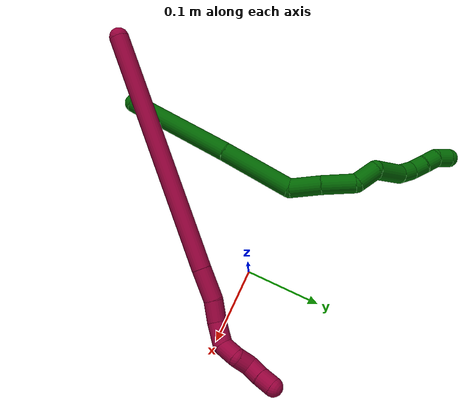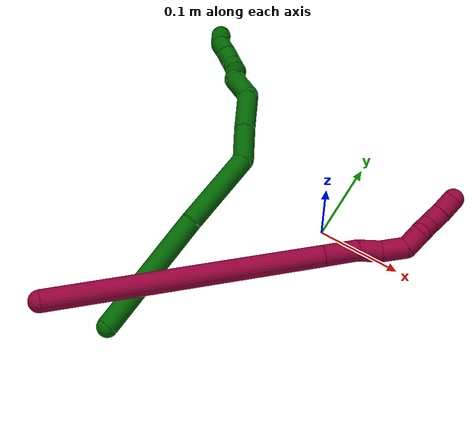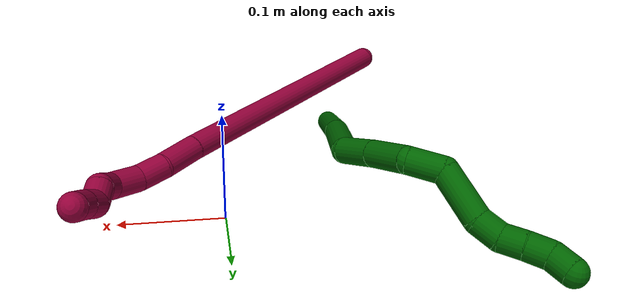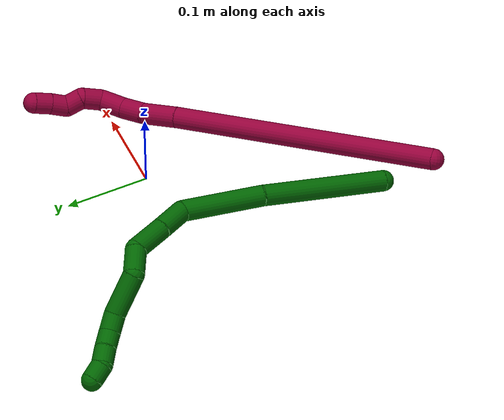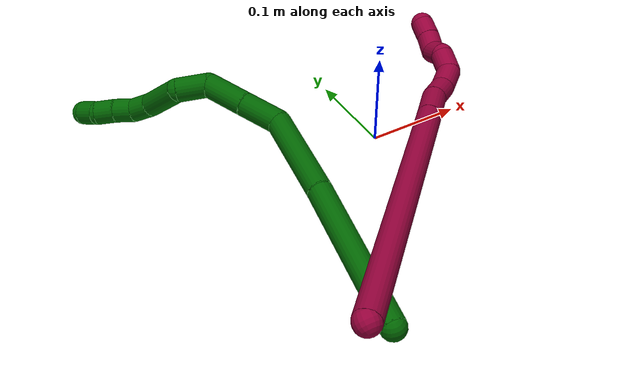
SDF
<sdf version="1.7">
 <world name="default">
  <model name="6">
   <static>0</static>
   <link name="6">
    <collision name="collision-cylinder-e_1_1_4">
     <pose>0.007955 0.068976 0.030334 -1.15647 0.105178 -0.068681</pose>
     <geometry><cylinder><radius>0.0125</radius><length>0.15154</length></cylinder></geometry>
     <surface>
      <friction><ode><mu>1.16</mu><mu2>1.16</mu2><slip1>0</slip1><slip2>0</slip2></ode></friction>
      <contact><ode><kp>1e+06</kp><kd>1</kd><max_vel>0</max_vel><min_depth>0.001</min_depth></ode></contact>
     </surface>
    </collision>
    <visual name="visual-cylinder-e_1_1_4">
     <pose>0.007955 0.068976 0.030334 -1.15647 0.105178 -0.068681</pose>
     <geometry><cylinder><radius>0.0125</radius><length>0.15154</length></cylinder></geometry>
     <material><ambient>0 0.392157 0.003922 1</ambient></material>
    </visual>
    <collision name="collision-cylinder-e_2_4_5">
     <pose>0.020336 0.184179 0.075914 -1.25223 0.0907 -0.065614</pose>
     <geometry><cylinder><radius>0.0125</radius><length>0.097755</length></cylinder></geometry>
     <surface>
      <friction><ode><mu>1.16</mu><mu2>1.16</mu2><slip1>0</slip1><slip2>0</slip2></ode></friction>
      <contact><ode><kp>1e+06</kp><kd>1</kd><max_vel>0</max_vel><min_depth>0.001</min_depth></ode></contact>
     </surface>
    </collision>
    <visual name="visual-cylinder-e_2_4_5">
     <pose>0.020336 0.184179 0.075914 -1.25223 0.0907 -0.065614</pose>
     <geometry><cylinder><radius>0.0125</radius><length>0.097755</length></cylinder></geometry>
     <material><ambient>0 0.392157 0.003922 1</ambient></material>
    </visual>
    <collision name="collision-cylinder-e_3_5_6">
     <pose>0.015087 0.245978 0.099935 -1.05761 -0.496213 0.293909</pose>
     <geometry><cylinder><radius>0.0125</radius><length>0.04065</length></cylinder></geometry>
     <surface>
      <friction><ode><mu>1.16</mu><mu2>1.16</mu2><slip1>0</slip1><slip2>0</slip2></ode></friction>
      <contact><ode><kp>1e+06</kp><kd>1</kd><max_vel>0</max_vel><min_depth>0.001</min_depth></ode></contact>
     </surface>
    </collision>
    <visual name="visual-cylinder-e_3_5_6">
     <pose>0.015087 0.245978 0.099935 -1.05761 -0.496213 0.293909</pose>
     <geometry><cylinder><radius>0.0125</radius><length>0.04065</length></cylinder></geometry>
     <material><ambient>0 0.392157 0.003922 1</ambient></material>
    </visual>
    <collision name="collision-cylinder-e_4_6_7">
     <pose>-0.004465 0.279252 0.117446 -1.11237 -0.463847 0.291552</pose>
     <geometry><cylinder><radius>0.0125</radius><length>0.044148</length></cylinder></geometry>
     <surface>
      <friction><ode><mu>1.16</mu><mu2>1.16</mu2><slip1>0</slip1><slip2>0</slip2></ode></friction>
      <contact><ode><kp>1e+06</kp><kd>1</kd><max_vel>0</max_vel><min_depth>0.001</min_depth></ode></contact>
     </surface>
    </collision>
    <visual name="visual-cylinder-e_4_6_7">
     <pose>-0.004465 0.279252 0.117446 -1.11237 -0.463847 0.291552</pose>
     <geometry><cylinder><radius>0.0125</radius><length>0.044148</length></cylinder></geometry>
     <material><ambient>0 0.392157 0.003922 1</ambient></material>
    </visual>
    <collision name="collision-cylinder-e_5_7_8">
     <pose>-0.028985 0.304015 0.127202 -1.42742 -1.11751 0.992496</pose>
     <geometry><cylinder><radius>0.0125</radius><length>0.032578</length></cylinder></geometry>
     <surface>
      <friction><ode><mu>1.16</mu><mu2>1.16</mu2><slip1>0</slip1><slip2>0</slip2></ode></friction>
      <contact><ode><kp>1e+06</kp><kd>1</kd><max_vel>0</max_vel><min_depth>0.001</min_depth></ode></contact>
     </surface>
    </collision>
    <visual name="visual-cylinder-e_5_7_8">
     <pose>-0.028985 0.304015 0.127202 -1.42742 -1.11751 0.992496</pose>
     <geometry><cylinder><radius>0.0125</radius><length>0.032578</length></cylinder></geometry>
     <material><ambient>0 0.392157 0.003922 1</ambient></material>
    </visual>
    <collision name="collision-cylinder-e_6_8_9">
     <pose>-0.055724 0.329827 0.117758 -2.07972 -0.512966 0.840118</pose>
     <geometry><cylinder><radius>0.0125</radius><length>0.049291</length></cylinder></geometry>
     <surface>
      <friction><ode><mu>1.16</mu><mu2>1.16</mu2><slip1>0</slip1><slip2>0</slip2></ode></friction>
      <contact><ode><kp>1e+06</kp><kd>1</kd><max_vel>0</max_vel><min_depth>0.001</min_depth></ode></contact>
     </surface>
    </collision>
    <visual name="visual-cylinder-e_6_8_9">
     <pose>-0.055724 0.329827 0.117758 -2.07972 -0.512966 0.840118</pose>
     <geometry><cylinder><radius>0.0125</radius><length>0.049291</length></cylinder></geometry>
     <material><ambient>0 0.392157 0.003922 1</ambient></material>
    </visual>
    <collision name="collision-cylinder-e_7_9_10">
     <pose>-0.076019 0.355745 0.104895 -1.89413 -0.826211 1.09426</pose>
     <geometry><cylinder><radius>0.0125</radius><length>0.022302</length></cylinder></geometry>
     <surface>
      <friction><ode><mu>1.16</mu><mu2>1.16</mu2><slip1>0</slip1><slip2>0</slip2></ode></friction>
      <contact><ode><kp>1e+06</kp><kd>1</kd><max_vel>0</max_vel><min_depth>0.001</min_depth></ode></contact>
     </surface>
    </collision>
    <visual name="visual-cylinder-e_7_9_10">
     <pose>-0.076019 0.355745 0.104895 -1.89413 -0.826211 1.09426</pose>
     <geometry><cylinder><radius>0.0125</radius><length>0.022302</length></cylinder></geometry>
     <material><ambient>0 0.392157 0.003922 1</ambient></material>
    </visual>
    <collision name="collision-cylinder-e_8_10_11">
     <pose>-0.092628 0.368642 0.103792 -1.34808 -0.960761 0.788919</pose>
     <geometry><cylinder><radius>0.0125</radius><length>0.020519</length></cylinder></geometry>
     <surface>
      <friction><ode><mu>1.16</mu><mu2>1.16</mu2><slip1>0</slip1><slip2>0</slip2></ode></friction>
      <contact><ode><kp>1e+06</kp><kd>1</kd><max_vel>0</max_vel><min_depth>0.001</min_depth></ode></contact>
     </surface>
    </collision>
    <visual name="visual-cylinder-e_8_10_11">
     <pose>-0.092628 0.368642 0.103792 -1.34808 -0.960761 0.788919</pose>
     <geometry><cylinder><radius>0.0125</radius><length>0.020519</length></cylinder></geometry>
     <material><ambient>0 0.392157 0.003922 1</ambient></material>
    </visual>
    <collision name="collision-cylinder-e_9_11_12">
     <pose>-0.10984 0.379898 0.105508 -1.49518 -1.00916 0.946408</pose>
     <geometry><cylinder><radius>0.0125</radius><length>0.020801</length></cylinder></geometry>
     <surface>
      <friction><ode><mu>1.16</mu><mu2>1.16</mu2><slip1>0</slip1><slip2>0</slip2></ode></friction>
      <contact><ode><kp>1e+06</kp><kd>1</kd><max_vel>0</max_vel><min_depth>0.001</min_depth></ode></contact>
     </surface>
    </collision>
    <visual name="visual-cylinder-e_9_11_12">
     <pose>-0.10984 0.379898 0.105508 -1.49518 -1.00916 0.946408</pose>
     <geometry><cylinder><radius>0.0125</radius><length>0.020801</length></cylinder></geometry>
     <material><ambient>0 0.392157 0.003922 1</ambient></material>
    </visual>
    <collision name="collision-cylinder-e_10_12_2">
     <pose>-0.124297 0.393897 0.105298 -1.64481 -0.587026 0.629339</pose>
     <geometry><cylinder><radius>0.0125</radius><length>0.020417</length></cylinder></geometry>
     <surface>
      <friction><ode><mu>1.16</mu><mu2>1.16</mu2><slip1>0</slip1><slip2>0</slip2></ode></friction>
      <contact><ode><kp>1e+06</kp><kd>1</kd><max_vel>0</max_vel><min_depth>0.001</min_depth></ode></contact>
     </surface>
    </collision>
    <visual name="visual-cylinder-e_10_12_2">
     <pose>-0.124297 0.393897 0.105298 -1.64481 -0.587026 0.629339</pose>
     <geometry><cylinder><radius>0.0125</radius><length>0.020417</length></cylinder></geometry>
     <material><ambient>0 0.392157 0.003922 1</ambient></material>
    </visual>
    <collision name="collision-sphere-2">
     <pose>-0.129951 0.402374 0.10467 0 -0 0</pose>
     <geometry><sphere><radius>0.0125</radius></sphere></geometry>
     <surface>
      <friction><ode><mu>1.16</mu><mu2>1.16</mu2><slip1>0</slip1><slip2>0</slip2></ode></friction>
      <contact><ode><kp>1e+06</kp><kd>1</kd><max_vel>0</max_vel><min_depth>0.001</min_depth></ode></contact>
     </surface>
    </collision>
    <visual name="visual-sphere-2">
     <pose>-0.129951 0.402374 0.10467 0 -0 0</pose>
     <geometry><sphere><radius>0.0125</radius></sphere></geometry>
     <material><ambient>0 0.392157 0.003922 1</ambient></material>
    </visual>
    <collision name="collision-sphere-12">
     <pose>-0.118642 0.385421 0.105927 0 -0 0</pose>
     <geometry><sphere><radius>0.0125</radius></sphere></geometry>
     <surface>
      <friction><ode><mu>1.16</mu><mu2>1.16</mu2><slip1>0</slip1><slip2>0</slip2></ode></friction>
      <contact><ode><kp>1e+06</kp><kd>1</kd><max_vel>0</max_vel><min_depth>0.001</min_depth></ode></contact>
     </surface>
    </collision>
    <visual name="visual-sphere-12">
     <pose>-0.118642 0.385421 0.105927 0 -0 0</pose>
     <geometry><sphere><radius>0.0125</radius></sphere></geometry>
     <material><ambient>0 0.392157 0.003922 1</ambient></material>
    </visual>
    <collision name="collision-sphere-11">
     <pose>-0.101037 0.374374 0.10509 0 -0 0</pose>
     <geometry><sphere><radius>0.0125</radius></sphere></geometry>
     <surface>
      <friction><ode><mu>1.16</mu><mu2>1.16</mu2><slip1>0</slip1><slip2>0</slip2></ode></friction>
      <contact><ode><kp>1e+06</kp><kd>1</kd><max_vel>0</max_vel><min_depth>0.001</min_depth></ode></contact>
     </surface>
    </collision>
    <visual name="visual-sphere-11">
     <pose>-0.101037 0.374374 0.10509 0 -0 0</pose>
     <geometry><sphere><radius>0.0125</radius></sphere></geometry>
     <material><ambient>0 0.392157 0.003922 1</ambient></material>
    </visual>
    <collision name="collision-sphere-10">
     <pose>-0.084219 0.36291 0.102494 0 -0 0</pose>
     <geometry><sphere><radius>0.0125</radius></sphere></geometry>
     <surface>
      <friction><ode><mu>1.16</mu><mu2>1.16</mu2><slip1>0</slip1><slip2>0</slip2></ode></friction>
      <contact><ode><kp>1e+06</kp><kd>1</kd><max_vel>0</max_vel><min_depth>0.001</min_depth></ode></contact>
     </surface>
    </collision>
    <visual name="visual-sphere-10">
     <pose>-0.084219 0.36291 0.102494 0 -0 0</pose>
     <geometry><sphere><radius>0.0125</radius></sphere></geometry>
     <material><ambient>0 0.392157 0.003922 1</ambient></material>
    </visual>
    <collision name="collision-sphere-9">
     <pose>-0.067819 0.34858 0.107295 0 -0 0</pose>
     <geometry><sphere><radius>0.0125</radius></sphere></geometry>
     <surface>
      <friction><ode><mu>1.16</mu><mu2>1.16</mu2><slip1>0</slip1><slip2>0</slip2></ode></friction>
      <contact><ode><kp>1e+06</kp><kd>1</kd><max_vel>0</max_vel><min_depth>0.001</min_depth></ode></contact>
     </surface>
    </collision>
    <visual name="visual-sphere-9">
     <pose>-0.067819 0.34858 0.107295 0 -0 0</pose>
     <geometry><sphere><radius>0.0125</radius></sphere></geometry>
     <material><ambient>0 0.392157 0.003922 1</ambient></material>
    </visual>
    <collision name="collision-sphere-4">
     <pose>0.015909 0.137952 0.060668 0 -0 0</pose>
     <geometry><sphere><radius>0.0125</radius></sphere></geometry>
     <surface>
      <friction><ode><mu>1.16</mu><mu2>1.16</mu2><slip1>0</slip1><slip2>0</slip2></ode></friction>
      <contact><ode><kp>1e+06</kp><kd>1</kd><max_vel>0</max_vel><min_depth>0.001</min_depth></ode></contact>
     </surface>
    </collision>
    <visual name="visual-sphere-4">
     <pose>0.015909 0.137952 0.060668 0 -0 0</pose>
     <geometry><sphere><radius>0.0125</radius></sphere></geometry>
     <material><ambient>0 0.392157 0.003922 1</ambient></material>
    </visual>
    <collision name="collision-sphere-1">
     <geometry><sphere><radius>0.0125</radius></sphere></geometry>
     <surface>
      <friction><ode><mu>1.16</mu><mu2>1.16</mu2><slip1>0</slip1><slip2>0</slip2></ode></friction>
      <contact><ode><kp>1e+06</kp><kd>1</kd><max_vel>0</max_vel><min_depth>0.001</min_depth></ode></contact>
     </surface>
    </collision>
    <visual name="visual-sphere-1">
     <geometry><sphere><radius>0.0125</radius></sphere></geometry>
     <material><ambient>0 0.392157 0.003922 1</ambient></material>
    </visual>
    <collision name="collision-sphere-8">
     <pose>-0.043629 0.311075 0.128221 0 -0 0</pose>
     <geometry><sphere><radius>0.0125</radius></sphere></geometry>
     <surface>
      <friction><ode><mu>1.16</mu><mu2>1.16</mu2><slip1>0</slip1><slip2>0</slip2></ode></friction>
      <contact><ode><kp>1e+06</kp><kd>1</kd><max_vel>0</max_vel><min_depth>0.001</min_depth></ode></contact>
     </surface>
    </collision>
    <visual name="visual-sphere-8">
     <pose>-0.043629 0.311075 0.128221 0 -0 0</pose>
     <geometry><sphere><radius>0.0125</radius></sphere></geometry>
     <material><ambient>0 0.392157 0.003922 1</ambient></material>
    </visual>
    <collision name="collision-sphere-5">
     <pose>0.024764 0.230407 0.09116 0 -0 0</pose>
     <geometry><sphere><radius>0.0125</radius></sphere></geometry>
     <surface>
      <friction><ode><mu>1.16</mu><mu2>1.16</mu2><slip1>0</slip1><slip2>0</slip2></ode></friction>
      <contact><ode><kp>1e+06</kp><kd>1</kd><max_vel>0</max_vel><min_depth>0.001</min_depth></ode></contact>
     </surface>
    </collision>
    <visual name="visual-sphere-5">
     <pose>0.024764 0.230407 0.09116 0 -0 0</pose>
     <geometry><sphere><radius>0.0125</radius></sphere></geometry>
     <material><ambient>0 0.392157 0.003922 1</ambient></material>
    </visual>
    <collision name="collision-sphere-6">
     <pose>0.00541 0.261549 0.10871 0 -0 0</pose>
     <geometry><sphere><radius>0.0125</radius></sphere></geometry>
     <surface>
      <friction><ode><mu>1.16</mu><mu2>1.16</mu2><slip1>0</slip1><slip2>0</slip2></ode></friction>
      <contact><ode><kp>1e+06</kp><kd>1</kd><max_vel>0</max_vel><min_depth>0.001</min_depth></ode></contact>
     </surface>
    </collision>
    <visual name="visual-sphere-6">
     <pose>0.00541 0.261549 0.10871 0 -0 0</pose>
     <geometry><sphere><radius>0.0125</radius></sphere></geometry>
     <material><ambient>0 0.392157 0.003922 1</ambient></material>
    </visual>
    <collision name="collision-sphere-7">
     <pose>-0.014341 0.296955 0.126182 0 -0 0</pose>
     <geometry><sphere><radius>0.0125</radius></sphere></geometry>
     <surface>
      <friction><ode><mu>1.16</mu><mu2>1.16</mu2><slip1>0</slip1><slip2>0</slip2></ode></friction>
      <contact><ode><kp>1e+06</kp><kd>1</kd><max_vel>0</max_vel><min_depth>0.001</min_depth></ode></contact>
     </surface>
    </collision>
    <visual name="visual-sphere-7">
     <pose>-0.014341 0.296955 0.126182 0 -0 0</pose>
     <geometry><sphere><radius>0.0125</radius></sphere></geometry>
     <material><ambient>0 0.392157 0.003922 1</ambient></material>
    </visual>
    <inertial>
     <pose>-0.017 0.216777 0.080054 0 -0 0</pose>
     <mass>0.5</mass>
     <inertia>
      <ixx>0.00038</ixx>
      <ixy>0</ixy>
      <ixz>0</ixz>
      <iyy>0.000185</iyy>
      <iyz>0</iyz>
      <izz>-0.000383</izz>
     </inertia>
    </inertial>
   </link>
   <pose>-0.141273 -0.238869 0.025296 -0.237548 -0.153493 -0.038552</pose>
  </model>
  <model name="8">
   <static>0</static>
   <link name="8">
    <collision name="collision-cylinder-e_1_1_4">
     <pose>0.062627 0.110869 -0.093015 -2.26885 0.408412 -0.835816</pose>
     <geometry><cylinder><radius>0.0125</radius><length>0.315378</length></cylinder></geometry>
     <surface>
      <friction><ode><mu>1.16</mu><mu2>1.16</mu2><slip1>0</slip1><slip2>0</slip2></ode></friction>
      <contact><ode><kp>1e+06</kp><kd>1</kd><max_vel>0</max_vel><min_depth>0.001</min_depth></ode></contact>
     </surface>
    </collision>
    <visual name="visual-cylinder-e_1_1_4">
     <pose>0.062627 0.110869 -0.093015 -2.26885 0.408412 -0.835816</pose>
     <geometry><cylinder><radius>0.0125</radius><length>0.315378</length></cylinder></geometry>
     <material><ambient>0.584314 0 0.227451 1</ambient></material>
    </visual>
    <collision name="collision-cylinder-e_2_4_5">
     <pose>0.134363 0.236112 -0.198232 -2.27463 0.450111 -0.918681</pose>
     <geometry><cylinder><radius>0.0125</radius><length>0.04188</length></cylinder></geometry>
     <surface>
      <friction><ode><mu>1.16</mu><mu2>1.16</mu2><slip1>0</slip1><slip2>0</slip2></ode></friction>
      <contact><ode><kp>1e+06</kp><kd>1</kd><max_vel>0</max_vel><min_depth>0.001</min_depth></ode></contact>
     </surface>
    </collision>
    <visual name="visual-cylinder-e_2_4_5">
     <pose>0.134363 0.236112 -0.198232 -2.27463 0.450111 -0.918681</pose>
     <geometry><cylinder><radius>0.0125</radius><length>0.04188</length></cylinder></geometry>
     <material><ambient>0.584314 0 0.227451 1</ambient></material>
    </visual>
    <collision name="collision-cylinder-e_3_5_6">
     <pose>0.148766 0.261935 -0.21655 -2.06142 0.387104 -0.631942</pose>
     <geometry><cylinder><radius>0.0125</radius><length>0.028037</length></cylinder></geometry>
     <surface>
      <friction><ode><mu>1.16</mu><mu2>1.16</mu2><slip1>0</slip1><slip2>0</slip2></ode></friction>
      <contact><ode><kp>1e+06</kp><kd>1</kd><max_vel>0</max_vel><min_depth>0.001</min_depth></ode></contact>
     </surface>
    </collision>
    <visual name="visual-cylinder-e_3_5_6">
     <pose>0.148766 0.261935 -0.21655 -2.06142 0.387104 -0.631942</pose>
     <geometry><cylinder><radius>0.0125</radius><length>0.028037</length></cylinder></geometry>
     <material><ambient>0.584314 0 0.227451 1</ambient></material>
    </visual>
    <collision name="collision-cylinder-e_4_6_7">
     <pose>0.157391 0.2848 -0.231982 -2.25532 0.222519 -0.462364</pose>
     <geometry><cylinder><radius>0.0125</radius><length>0.030212</length></cylinder></geometry>
     <surface>
      <friction><ode><mu>1.16</mu><mu2>1.16</mu2><slip1>0</slip1><slip2>0</slip2></ode></friction>
      <contact><ode><kp>1e+06</kp><kd>1</kd><max_vel>0</max_vel><min_depth>0.001</min_depth></ode></contact>
     </surface>
    </collision>
    <visual name="visual-cylinder-e_4_6_7">
     <pose>0.157391 0.2848 -0.231982 -2.25532 0.222519 -0.462364</pose>
     <geometry><cylinder><radius>0.0125</radius><length>0.030212</length></cylinder></geometry>
     <material><ambient>0.584314 0 0.227451 1</ambient></material>
    </visual>
    <collision name="collision-cylinder-e_5_7_8">
     <pose>0.162399 0.298682 -0.252722 -2.92881 0.142261 -1.1767</pose>
     <geometry><cylinder><radius>0.0125</radius><length>0.023614</length></cylinder></geometry>
     <surface>
      <friction><ode><mu>1.16</mu><mu2>1.16</mu2><slip1>0</slip1><slip2>0</slip2></ode></friction>
      <contact><ode><kp>1e+06</kp><kd>1</kd><max_vel>0</max_vel><min_depth>0.001</min_depth></ode></contact>
     </surface>
    </collision>
    <visual name="visual-cylinder-e_5_7_8">
     <pose>0.162399 0.298682 -0.252722 -2.92881 0.142261 -1.1767</pose>
     <geometry><cylinder><radius>0.0125</radius><length>0.023614</length></cylinder></geometry>
     <material><ambient>0.584314 0 0.227451 1</ambient></material>
    </visual>
    <collision name="collision-cylinder-e_6_8_9">
     <pose>0.171711 0.302611 -0.270756 -2.92409 0.845638 -2.6655</pose>
     <geometry><cylinder><radius>0.0125</radius><length>0.020413</length></cylinder></geometry>
     <surface>
      <friction><ode><mu>1.16</mu><mu2>1.16</mu2><slip1>0</slip1><slip2>0</slip2></ode></friction>
      <contact><ode><kp>1e+06</kp><kd>1</kd><max_vel>0</max_vel><min_depth>0.001</min_depth></ode></contact>
     </surface>
    </collision>
    <visual name="visual-cylinder-e_6_8_9">
     <pose>0.171711 0.302611 -0.270756 -2.92409 0.845638 -2.6655</pose>
     <geometry><cylinder><radius>0.0125</radius><length>0.020413</length></cylinder></geometry>
     <material><ambient>0.584314 0 0.227451 1</ambient></material>
    </visual>
    <collision name="collision-cylinder-e_7_9_10">
     <pose>0.180504 0.306823 -0.287125 -2.8668 0.113394 -0.779036</pose>
     <geometry><cylinder><radius>0.0125</radius><length>0.020409</length></cylinder></geometry>
     <surface>
      <friction><ode><mu>1.16</mu><mu2>1.16</mu2><slip1>0</slip1><slip2>0</slip2></ode></friction>
      <contact><ode><kp>1e+06</kp><kd>1</kd><max_vel>0</max_vel><min_depth>0.001</min_depth></ode></contact>
     </surface>
    </collision>
    <visual name="visual-cylinder-e_7_9_10">
     <pose>0.180504 0.306823 -0.287125 -2.8668 0.113394 -0.779036</pose>
     <geometry><cylinder><radius>0.0125</radius><length>0.020409</length></cylinder></geometry>
     <material><ambient>0.584314 0 0.227451 1</ambient></material>
    </visual>
    <collision name="collision-cylinder-e_8_10_2">
     <pose>0.183372 0.31146 -0.306583 -2.94965 0.171602 -1.45837</pose>
     <geometry><cylinder><radius>0.0125</radius><length>0.020058</length></cylinder></geometry>
     <surface>
      <friction><ode><mu>1.16</mu><mu2>1.16</mu2><slip1>0</slip1><slip2>0</slip2></ode></friction>
      <contact><ode><kp>1e+06</kp><kd>1</kd><max_vel>0</max_vel><min_depth>0.001</min_depth></ode></contact>
     </surface>
    </collision>
    <visual name="visual-cylinder-e_8_10_2">
     <pose>0.183372 0.31146 -0.306583 -2.94965 0.171602 -1.45837</pose>
     <geometry><cylinder><radius>0.0125</radius><length>0.020058</length></cylinder></geometry>
     <material><ambient>0.584314 0 0.227451 1</ambient></material>
    </visual>
    <collision name="collision-sphere-2">
     <pose>0.185084 0.313345 -0.316284 0 -0 0</pose>
     <geometry><sphere><radius>0.0125</radius></sphere></geometry>
     <surface>
      <friction><ode><mu>1.16</mu><mu2>1.16</mu2><slip1>0</slip1><slip2>0</slip2></ode></friction>
      <contact><ode><kp>1e+06</kp><kd>1</kd><max_vel>0</max_vel><min_depth>0.001</min_depth></ode></contact>
     </surface>
    </collision>
    <visual name="visual-sphere-2">
     <pose>0.185084 0.313345 -0.316284 0 -0 0</pose>
     <geometry><sphere><radius>0.0125</radius></sphere></geometry>
     <material><ambient>0.584314 0 0.227451 1</ambient></material>
    </visual>
    <collision name="collision-sphere-10">
     <pose>0.181659 0.309574 -0.296883 0 -0 0</pose>
     <geometry><sphere><radius>0.0125</radius></sphere></geometry>
     <surface>
      <friction><ode><mu>1.16</mu><mu2>1.16</mu2><slip1>0</slip1><slip2>0</slip2></ode></friction>
      <contact><ode><kp>1e+06</kp><kd>1</kd><max_vel>0</max_vel><min_depth>0.001</min_depth></ode></contact>
     </surface>
    </collision>
    <visual name="visual-sphere-10">
     <pose>0.181659 0.309574 -0.296883 0 -0 0</pose>
     <geometry><sphere><radius>0.0125</radius></sphere></geometry>
     <material><ambient>0.584314 0 0.227451 1</ambient></material>
    </visual>
    <collision name="collision-sphere-9">
     <pose>0.17935 0.304072 -0.277366 0 -0 0</pose>
     <geometry><sphere><radius>0.0125</radius></sphere></geometry>
     <surface>
      <friction><ode><mu>1.16</mu><mu2>1.16</mu2><slip1>0</slip1><slip2>0</slip2></ode></friction>
      <contact><ode><kp>1e+06</kp><kd>1</kd><max_vel>0</max_vel><min_depth>0.001</min_depth></ode></contact>
     </surface>
    </collision>
    <visual name="visual-sphere-9">
     <pose>0.17935 0.304072 -0.277366 0 -0 0</pose>
     <geometry><sphere><radius>0.0125</radius></sphere></geometry>
     <material><ambient>0.584314 0 0.227451 1</ambient></material>
    </visual>
    <collision name="collision-sphere-4">
     <pose>0.125253 0.221738 -0.18603 0 -0 0</pose>
     <geometry><sphere><radius>0.0125</radius></sphere></geometry>
     <surface>
      <friction><ode><mu>1.16</mu><mu2>1.16</mu2><slip1>0</slip1><slip2>0</slip2></ode></friction>
      <contact><ode><kp>1e+06</kp><kd>1</kd><max_vel>0</max_vel><min_depth>0.001</min_depth></ode></contact>
     </surface>
    </collision>
    <visual name="visual-sphere-4">
     <pose>0.125253 0.221738 -0.18603 0 -0 0</pose>
     <geometry><sphere><radius>0.0125</radius></sphere></geometry>
     <material><ambient>0.584314 0 0.227451 1</ambient></material>
    </visual>
    <collision name="collision-sphere-1">
     <geometry><sphere><radius>0.0125</radius></sphere></geometry>
     <surface>
      <friction><ode><mu>1.16</mu><mu2>1.16</mu2><slip1>0</slip1><slip2>0</slip2></ode></friction>
      <contact><ode><kp>1e+06</kp><kd>1</kd><max_vel>0</max_vel><min_depth>0.001</min_depth></ode></contact>
     </surface>
    </collision>
    <visual name="visual-sphere-1">
     <geometry><sphere><radius>0.0125</radius></sphere></geometry>
     <material><ambient>0.584314 0 0.227451 1</ambient></material>
    </visual>
    <collision name="collision-sphere-8">
     <pose>0.164073 0.30115 -0.264146 0 -0 0</pose>
     <geometry><sphere><radius>0.0125</radius></sphere></geometry>
     <surface>
      <friction><ode><mu>1.16</mu><mu2>1.16</mu2><slip1>0</slip1><slip2>0</slip2></ode></friction>
      <contact><ode><kp>1e+06</kp><kd>1</kd><max_vel>0</max_vel><min_depth>0.001</min_depth></ode></contact>
     </surface>
    </collision>
    <visual name="visual-sphere-8">
     <pose>0.164073 0.30115 -0.264146 0 -0 0</pose>
     <geometry><sphere><radius>0.0125</radius></sphere></geometry>
     <material><ambient>0.584314 0 0.227451 1</ambient></material>
    </visual>
    <collision name="collision-sphere-5">
     <pose>0.143474 0.250485 -0.210433 0 -0 0</pose>
     <geometry><sphere><radius>0.0125</radius></sphere></geometry>
     <surface>
      <friction><ode><mu>1.16</mu><mu2>1.16</mu2><slip1>0</slip1><slip2>0</slip2></ode></friction>
      <contact><ode><kp>1e+06</kp><kd>1</kd><max_vel>0</max_vel><min_depth>0.001</min_depth></ode></contact>
     </surface>
    </collision>
    <visual name="visual-sphere-5">
     <pose>0.143474 0.250485 -0.210433 0 -0 0</pose>
     <geometry><sphere><radius>0.0125</radius></sphere></geometry>
     <material><ambient>0.584314 0 0.227451 1</ambient></material>
    </visual>
    <collision name="collision-sphere-6">
     <pose>0.154058 0.273385 -0.222666 0 -0 0</pose>
     <geometry><sphere><radius>0.0125</radius></sphere></geometry>
     <surface>
      <friction><ode><mu>1.16</mu><mu2>1.16</mu2><slip1>0</slip1><slip2>0</slip2></ode></friction>
      <contact><ode><kp>1e+06</kp><kd>1</kd><max_vel>0</max_vel><min_depth>0.001</min_depth></ode></contact>
     </surface>
    </collision>
    <visual name="visual-sphere-6">
     <pose>0.154058 0.273385 -0.222666 0 -0 0</pose>
     <geometry><sphere><radius>0.0125</radius></sphere></geometry>
     <material><ambient>0.584314 0 0.227451 1</ambient></material>
    </visual>
    <collision name="collision-sphere-7">
     <pose>0.160725 0.296214 -0.241298 0 -0 0</pose>
     <geometry><sphere><radius>0.0125</radius></sphere></geometry>
     <surface>
      <friction><ode><mu>1.16</mu><mu2>1.16</mu2><slip1>0</slip1><slip2>0</slip2></ode></friction>
      <contact><ode><kp>1e+06</kp><kd>1</kd><max_vel>0</max_vel><min_depth>0.001</min_depth></ode></contact>
     </surface>
    </collision>
    <visual name="visual-sphere-7">
     <pose>0.160725 0.296214 -0.241298 0 -0 0</pose>
     <geometry><sphere><radius>0.0125</radius></sphere></geometry>
     <material><ambient>0.584314 0 0.227451 1</ambient></material>
    </visual>
    <inertial>
     <pose>0.098012 0.173083 -0.148442 0 -0 0</pose>
     <mass>0.5</mass>
     <inertia>
      <ixx>-0.00016</ixx>
      <ixy>0</ixy>
      <ixz>0</ixz>
      <iyy>-0.00232</iyy>
      <iyz>0</iyz>
      <izz>-0.002933</izz>
     </inertia>
    </inertial>
   </link>
   <pose>-0.193486 -0.273359 0.099471 -2.94164 1.07436 1.73726</pose>
  </model>
 </world>
</sdf>
